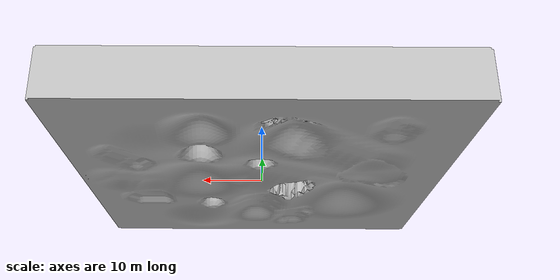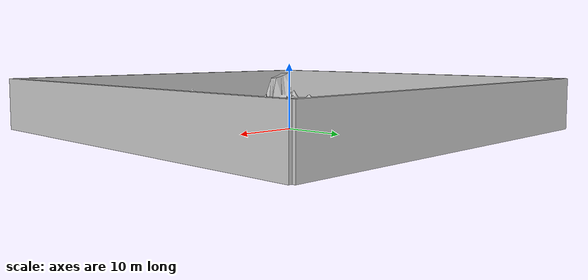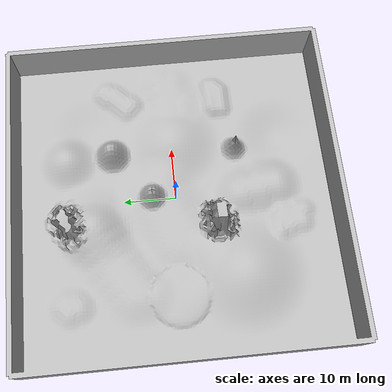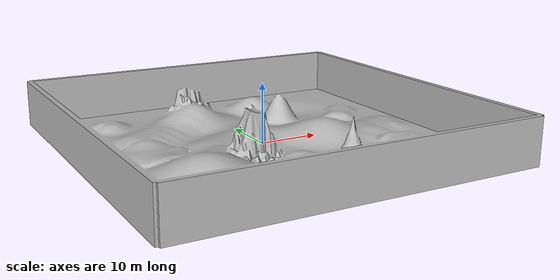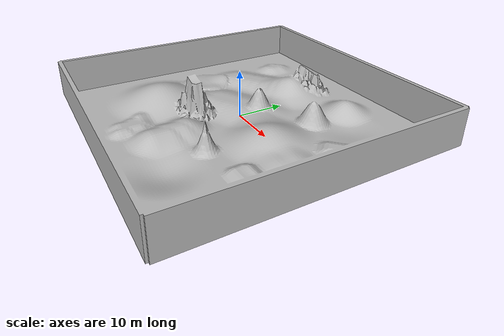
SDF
<?xml version="1.0"?>
<sdf version="1.4">
  <model name="map_yewai">
    <static>true</static>
    <link name="map_link">
      <pose>0 0 -0 0 0 0</pose>
      <collision name="collision">
        <geometry>
          <mesh>
            <uri>model://map_xingxing/meshes/map_xingxing.dae</uri>
            <scale>1.5 1.5 1.3</scale>
          </mesh>
        </geometry>
      </collision>
      <visual name="visual">
        <geometry>
          <mesh>
            <uri>model://map_xingxing/meshes/map_xingxing.dae</uri>
            <scale>1.5 1.5 1.3</scale>
          </mesh>
        </geometry>
        <material>
          <script>
            <uri>model://map_xingxing/materials/scripts/map.material</uri>
            <uri>model://map_xingxing/materials/textures/texture.jpg</uri>
            <name>map_xingxing/Image</name>
          </script>
        </material>
      </visual>
      <surface>
        <friction>
          <ode>
              <mu>99999999.0</mu>
              <mu2>99999999.0</mu2>
              <fdir1>0 0 0</fdir1>
              <slip1>0</slip1>
              <slip2>0</slip2>
          </ode>
        </friction>
      </surface>
    </link>

  </model>
</sdf>
